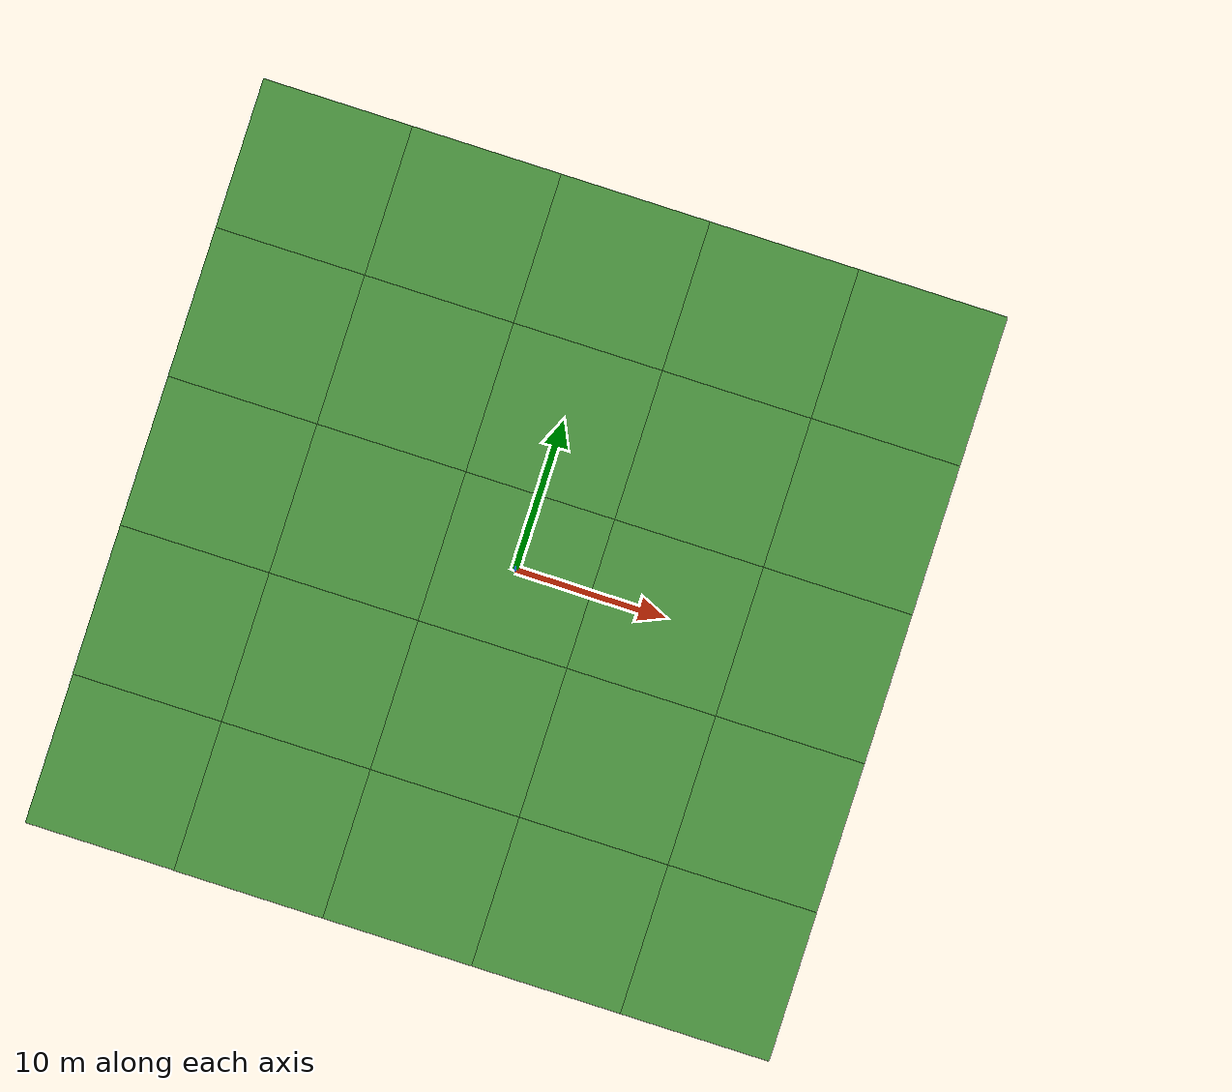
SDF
<?xml version='1.0'?>
<sdf version='1.4'>
  <model name='grass_plan_medium'>
    <static>true</static>
    <link name='link'>
      <collision name='collision'>
        <geometry>
          <plane>
            <normal>0 0 1</normal>
            <size>50 50</size>
          </plane>
        </geometry>
        <surface>
          <friction>
            <ode>
              <mu>0.5</mu>
              <mu2>.5</mu2>
            </ode>
          </friction>
        </surface>
      </collision>

      <visual name='visual_0'>
        <pose>-20 -20 0 0 0 0</pose>

        <cast_shadows>false</cast_shadows>
        <geometry>
          <plane>
            <normal>0 0 1</normal>
            <size>10 10</size>
          </plane>
        </geometry>
        <material>
          <script>
            <uri>model://grass_plane/materials/scripts</uri>
            <uri>model://grass_plane/materials/textures</uri>
            <name>vrc/grass</name>
          </script>
        </material>
      </visual>

      <visual name='visual_1'>
        <pose>-10 -20 0 0 0 0</pose>

        <cast_shadows>false</cast_shadows>
        <geometry>
          <plane>
            <normal>0 0 1</normal>
            <size>10 10</size>
          </plane>
        </geometry>
        <material>
          <script>
            <uri>model://grass_plane/materials/scripts</uri>
            <uri>model://grass_plane/materials/textures</uri>
            <name>vrc/grass</name>
          </script>
        </material>
      </visual>

      <visual name='visual_2'>
        <pose>0 -20 0 0 0 0</pose>

        <cast_shadows>false</cast_shadows>
        <geometry>
          <plane>
            <normal>0 0 1</normal>
            <size>10 10</size>
          </plane>
        </geometry>
        <material>
          <script>
            <uri>model://grass_plane/materials/scripts</uri>
            <uri>model://grass_plane/materials/textures</uri>
            <name>vrc/grass</name>
          </script>
        </material>
      </visual>

      <visual name='visual_3'>
        <pose>10 -20 0 0 0 0</pose>

        <cast_shadows>false</cast_shadows>
        <geometry>
          <plane>
            <normal>0 0 1</normal>
            <size>10 10</size>
          </plane>
        </geometry>
        <material>
          <script>
            <uri>model://grass_plane/materials/scripts</uri>
            <uri>model://grass_plane/materials/textures</uri>
            <name>vrc/grass</name>
          </script>
        </material>
      </visual>

      <visual name='visual_4'>
        <pose>20 -20 0 0 0 0</pose>

        <cast_shadows>false</cast_shadows>
        <geometry>
          <plane>
            <normal>0 0 1</normal>
            <size>10 10</size>
          </plane>
        </geometry>
        <material>
          <script>
            <uri>model://grass_plane/materials/scripts</uri>
            <uri>model://grass_plane/materials/textures</uri>
            <name>vrc/grass</name>
          </script>
        </material>
      </visual>

      <visual name='visual_6'>
        <pose>-20 -10 0 0 0 0</pose>

        <cast_shadows>false</cast_shadows>
        <geometry>
          <plane>
            <normal>0 0 1</normal>
            <size>10 10</size>
          </plane>
        </geometry>
        <material>
          <script>
            <uri>model://grass_plane/materials/scripts</uri>
            <uri>model://grass_plane/materials/textures</uri>
            <name>vrc/grass</name>
          </script>
        </material>
      </visual>

      <visual name='visual_7'>
        <pose>-10 -10 0 0 0 0</pose>

        <cast_shadows>false</cast_shadows>
        <geometry>
          <plane>
            <normal>0 0 1</normal>
            <size>10 10</size>
          </plane>
        </geometry>
        <material>
          <script>
            <uri>model://grass_plane/materials/scripts</uri>
            <uri>model://grass_plane/materials/textures</uri>
            <name>vrc/grass</name>
          </script>
        </material>
      </visual>

      <visual name='visual_8'>
        <pose>0 -10 0 0 0 0</pose>

        <cast_shadows>false</cast_shadows>
        <geometry>
          <plane>
            <normal>0 0 1</normal>
            <size>10 10</size>
          </plane>
        </geometry>
        <material>
          <script>
            <uri>model://grass_plane/materials/scripts</uri>
            <uri>model://grass_plane/materials/textures</uri>
            <name>vrc/grass</name>
          </script>
        </material>
      </visual>

      <visual name='visual_9'>
        <pose>10 -10 0 0 0 0</pose>

        <cast_shadows>false</cast_shadows>
        <geometry>
          <plane>
            <normal>0 0 1</normal>
            <size>10 10</size>
          </plane>
        </geometry>
        <material>
          <script>
            <uri>model://grass_plane/materials/scripts</uri>
            <uri>model://grass_plane/materials/textures</uri>
            <name>vrc/grass</name>
          </script>
        </material>
      </visual>

      <visual name='visual_10'>
        <pose>20 -10 0 0 0 0</pose>

        <cast_shadows>false</cast_shadows>
        <geometry>
          <plane>
            <normal>0 0 1</normal>
            <size>10 10</size>
          </plane>
        </geometry>
        <material>
          <script>
            <uri>model://grass_plane/materials/scripts</uri>
            <uri>model://grass_plane/materials/textures</uri>
            <name>vrc/grass</name>
          </script>
        </material>
      </visual>

      <visual name='visual_13'>
        <pose>-20 0 0 0 0 0</pose>

        <cast_shadows>false</cast_shadows>
        <geometry>
          <plane>
            <normal>0 0 1</normal>
            <size>10 10</size>
          </plane>
        </geometry>
        <material>
          <script>
            <uri>model://grass_plane/materials/scripts</uri>
            <uri>model://grass_plane/materials/textures</uri>
            <name>vrc/grass</name>
          </script>
        </material>
      </visual>

      <visual name='visual_14'>
        <pose>-10 0 0 0 0 0</pose>

        <cast_shadows>false</cast_shadows>
        <geometry>
          <plane>
            <normal>0 0 1</normal>
            <size>10 10</size>
          </plane>
        </geometry>
        <material>
          <script>
            <uri>model://grass_plane/materials/scripts</uri>
            <uri>model://grass_plane/materials/textures</uri>
            <name>vrc/grass</name>
          </script>
        </material>
      </visual>

      <visual name='visual_15'>
        <pose>0 0 0 0 0 0</pose>

        <cast_shadows>false</cast_shadows>
        <geometry>
          <plane>
            <normal>0 0 1</normal>
            <size>10 10</size>
          </plane>
        </geometry>
        <material>
          <script>
            <uri>model://grass_plane/materials/scripts</uri>
            <uri>model://grass_plane/materials/textures</uri>
            <name>vrc/grass</name>
          </script>
        </material>
      </visual>

      <visual name='visual_16'>
        <pose>10 0 0 0 0 0</pose>

        <cast_shadows>false</cast_shadows>
        <geometry>
          <plane>
            <normal>0 0 1</normal>
            <size>10 10</size>
          </plane>
        </geometry>
        <material>
          <script>
            <uri>model://grass_plane/materials/scripts</uri>
            <uri>model://grass_plane/materials/textures</uri>
            <name>vrc/grass</name>
          </script>
        </material>
      </visual>

      <visual name='visual_17'>
        <pose>20 0 0 0 0 0</pose>

        <cast_shadows>false</cast_shadows>
        <geometry>
          <plane>
            <normal>0 0 1</normal>
            <size>10 10</size>
          </plane>
        </geometry>
        <material>
          <script>
            <uri>model://grass_plane/materials/scripts</uri>
            <uri>model://grass_plane/materials/textures</uri>
            <name>vrc/grass</name>
          </script>
        </material>
      </visual>

      <visual name='visual_22'>
        <pose>-20 10 0 0 0 0</pose>

        <cast_shadows>false</cast_shadows>
        <geometry>
          <plane>
            <normal>0 0 1</normal>
            <size>10 10</size>
          </plane>
        </geometry>
        <material>
          <script>
            <uri>model://grass_plane/materials/scripts</uri>
            <uri>model://grass_plane/materials/textures</uri>
            <name>vrc/grass</name>
          </script>
        </material>
      </visual>

      <visual name='visual_23'>
        <pose>-10 10 0 0 0 0</pose>

        <cast_shadows>false</cast_shadows>
        <geometry>
          <plane>
            <normal>0 0 1</normal>
            <size>10 10</size>
          </plane>
        </geometry>
        <material>
          <script>
            <uri>model://grass_plane/materials/scripts</uri>
            <uri>model://grass_plane/materials/textures</uri>
            <name>vrc/grass</name>
          </script>
        </material>
      </visual>

      <visual name='visual_24'>
        <pose>0 10 0 0 0 0</pose>

        <cast_shadows>false</cast_shadows>
        <geometry>
          <plane>
            <normal>0 0 1</normal>
            <size>10 10</size>
          </plane>
        </geometry>
        <material>
          <script>
            <uri>model://grass_plane/materials/scripts</uri>
            <uri>model://grass_plane/materials/textures</uri>
            <name>vrc/grass</name>
          </script>
        </material>
      </visual>

      <visual name='visual_25'>
        <pose>10 10 0 0 0 0</pose>

        <cast_shadows>false</cast_shadows>
        <geometry>
          <plane>
            <normal>0 0 1</normal>
            <size>10 10</size>
          </plane>
        </geometry>
        <material>
          <script>
            <uri>model://grass_plane/materials/scripts</uri>
            <uri>model://grass_plane/materials/textures</uri>
            <name>vrc/grass</name>
          </script>
        </material>
      </visual>

      <visual name='visual_26'>
        <pose>20 10 0 0 0 0</pose>

        <cast_shadows>false</cast_shadows>
        <geometry>
          <plane>
            <normal>0 0 1</normal>
            <size>10 10</size>
          </plane>
        </geometry>
        <material>
          <script>
            <uri>model://grass_plane/materials/scripts</uri>
            <uri>model://grass_plane/materials/textures</uri>
            <name>vrc/grass</name>
          </script>
        </material>
      </visual>

    <visual name='visual_22b'>
        <pose>-20 20 0 0 0 0</pose>

        <cast_shadows>false</cast_shadows>
        <geometry>
          <plane>
            <normal>0 0 1</normal>
            <size>10 10</size>
          </plane>
        </geometry>
        <material>
          <script>
            <uri>model://grass_plane/materials/scripts</uri>
            <uri>model://grass_plane/materials/textures</uri>
            <name>vrc/grass</name>
          </script>
        </material>
      </visual>

      <visual name='visual_23b'>
        <pose>-10 20 0 0 0 0</pose>

        <cast_shadows>false</cast_shadows>
        <geometry>
          <plane>
            <normal>0 0 1</normal>
            <size>10 10</size>
          </plane>
        </geometry>
        <material>
          <script>
            <uri>model://grass_plane/materials/scripts</uri>
            <uri>model://grass_plane/materials/textures</uri>
            <name>vrc/grass</name>
          </script>
        </material>
      </visual>

      <visual name='visual_24b'>
        <pose>0 20 0 0 0 0</pose>

        <cast_shadows>false</cast_shadows>
        <geometry>
          <plane>
            <normal>0 0 1</normal>
            <size>10 10</size>
          </plane>
        </geometry>
        <material>
          <script>
            <uri>model://grass_plane/materials/scripts</uri>
            <uri>model://grass_plane/materials/textures</uri>
            <name>vrc/grass</name>
          </script>
        </material>
      </visual>

      <visual name='visual_25b'>
        <pose>10 20 0 0 0 0</pose>

        <cast_shadows>false</cast_shadows>
        <geometry>
          <plane>
            <normal>0 0 1</normal>
            <size>10 10</size>
          </plane>
        </geometry>
        <material>
          <script>
            <uri>model://grass_plane/materials/scripts</uri>
            <uri>model://grass_plane/materials/textures</uri>
            <name>vrc/grass</name>
          </script>
        </material>
      </visual>

      <visual name='visual_32'>
        <pose>20 20 0 0 0 0</pose>

        <cast_shadows>false</cast_shadows>
        <geometry>
          <plane>
            <normal>0 0 1</normal>
            <size>10 10</size>
          </plane>
        </geometry>
        <material>
          <script>
            <uri>model://grass_plane/materials/scripts</uri>
            <uri>model://grass_plane/materials/textures</uri>
            <name>vrc/grass</name>
          </script>
        </material>
      </visual>
    </link>
  </model>
</sdf>
